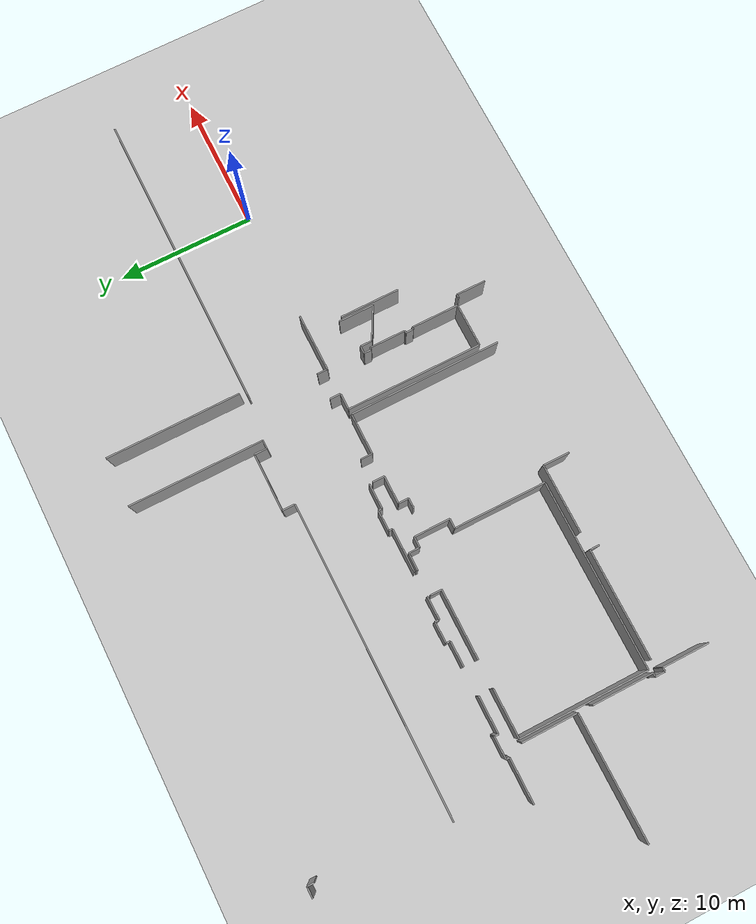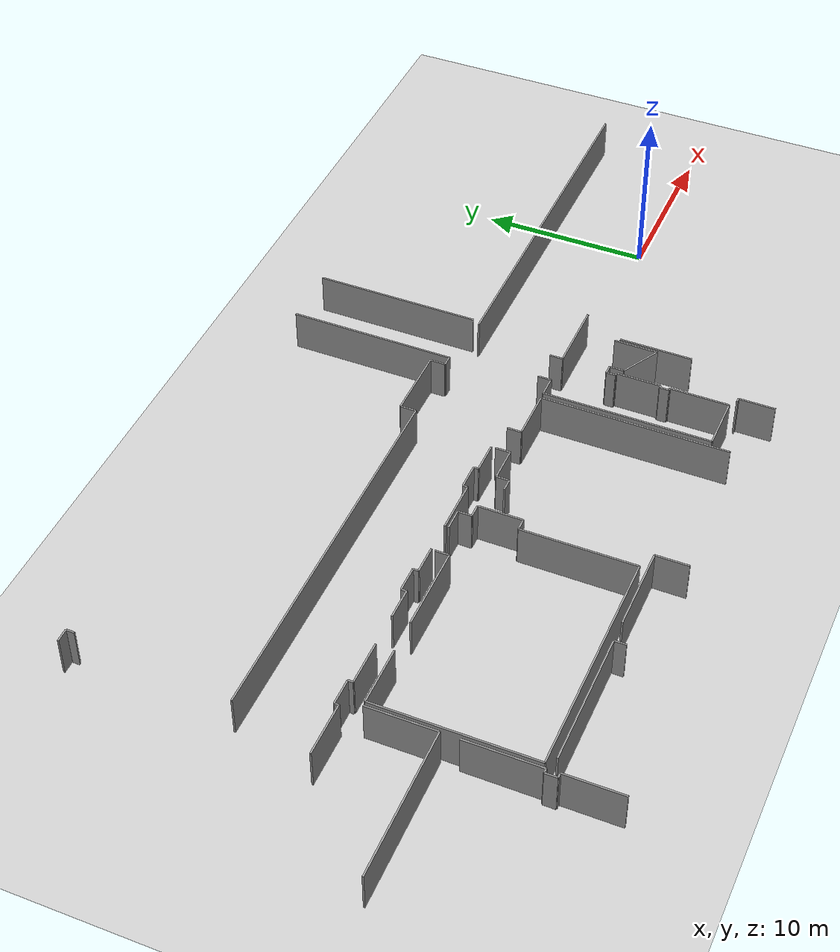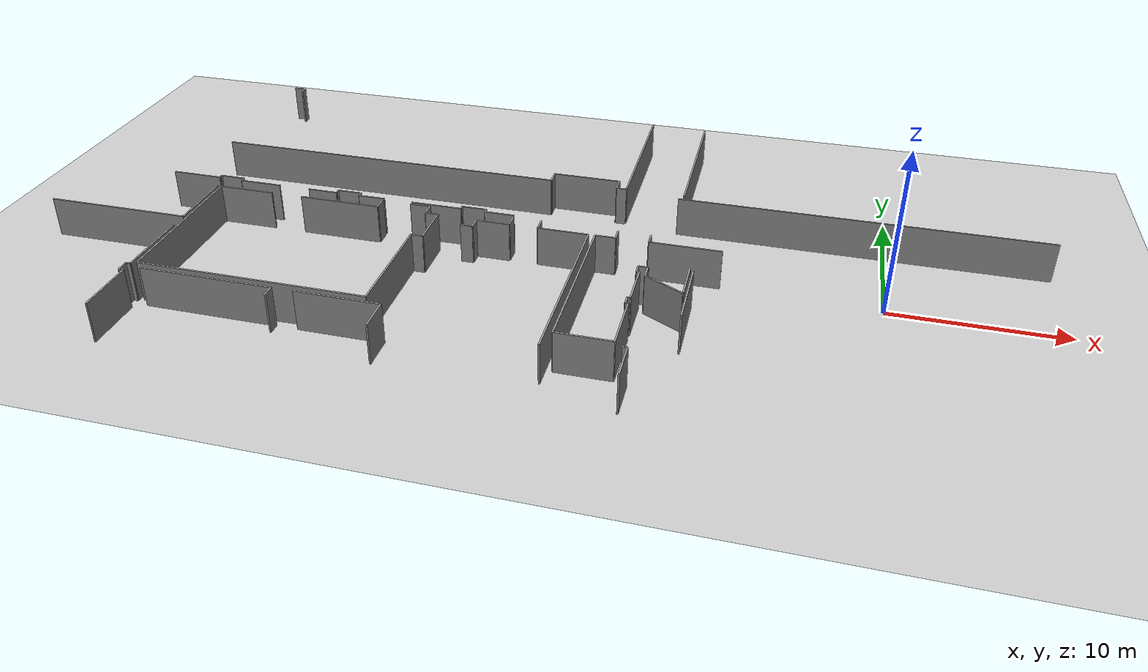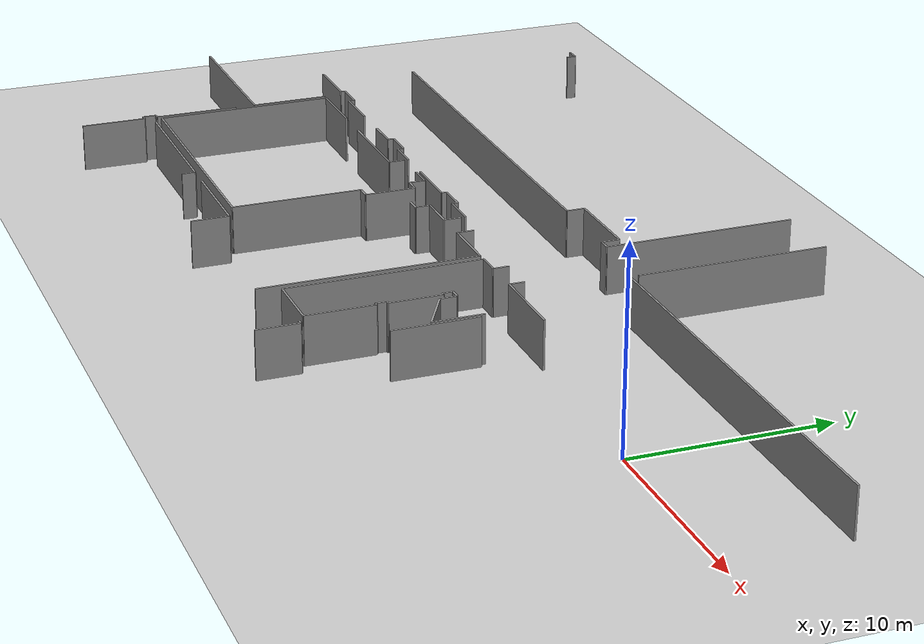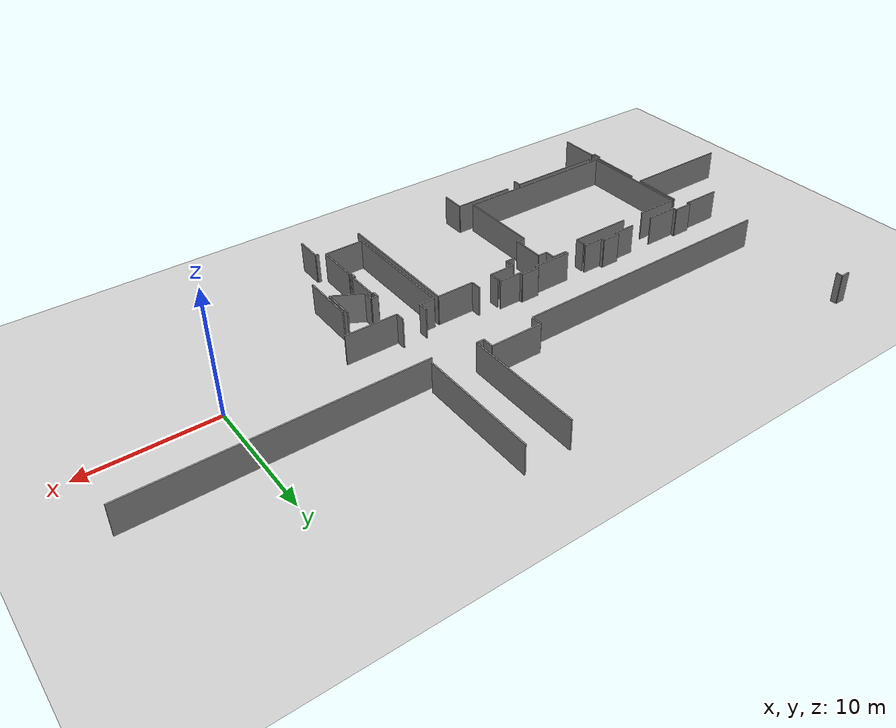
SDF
<sdf version="1.6">
 <world name="default">
  <model name="ground_plane">
   <static>1</static>
   <link name="link">
    <collision name="collision">
     <geometry><plane><normal>0 0 1</normal><size>100 100</size></plane></geometry>
     <surface><friction><ode><mu>100</mu><mu2>50</mu2></ode></friction></surface>
    </collision>
    <visual name="visual">
     <cast_shadows>0</cast_shadows>
     <geometry><plane><normal>0 0 1</normal><size>100 100</size></plane></geometry>
     <material>
      <script><uri>file://media/materials/scripts/gazebo.material</uri><name>Gazebo/Grey</name></script>
     </material>
    </visual>
   </link>
  </model>
  <model name="50057022">
   <static>1</static>
   <link name="Wall_26">
    <collision name="Wall_26_Collision">
     <geometry><box><size>0.495910292578 0.1 2.5</size></box></geometry>
     <pose>0.247955146289 0 1.25 0 0 0</pose>
    </collision>
    <visual name="Wall_26_Visual">
     <pose>0.247955146289 0 1.25 0 0 0</pose>
     <geometry><box><size>0.495910292578 0.1 2.5</size></box></geometry>
     <material>
      <script><uri>file://media/materials/scripts/gazebo.material</uri><name>Gazebo/Grey</name></script>
      <ambient>1 1 1 1</ambient>
     </material>
    </visual>
    <pose>14.2147432242 -8.39676371959 0 0 0 1.57079632679</pose>
   </link>
   <link name="Wall_27">
    <collision name="Wall_27_Collision">
     <geometry><box><size>0.782455953585 0.1 2.5</size></box></geometry>
     <pose>0.391227976792 0 1.25 0 0 0</pose>
    </collision>
    <visual name="Wall_27_Visual">
     <pose>0.391227976792 0 1.25 0 0 0</pose>
     <geometry><box><size>0.782455953585 0.1 2.5</size></box></geometry>
     <material>
      <script><uri>file://media/materials/scripts/gazebo.material</uri><name>Gazebo/Grey</name></script>
      <ambient>1 1 1 1</ambient>
     </material>
    </visual>
    <pose>14.2147432242 -7.90085342702 0 0 0 3.14159265359</pose>
   </link>
   <link name="Wall_36">
    <collision name="Wall_36_Collision">
     <geometry><box><size>9.81010171674 0.1 2.5</size></box></geometry>
     <pose>4.90505085837 0 1.25 0 0 0</pose>
    </collision>
    <visual name="Wall_36_Visual">
     <pose>4.90505085837 0 1.25 0 0 0</pose>
     <geometry><box><size>9.81010171674 0.1 2.5</size></box></geometry>
     <material>
      <script><uri>file://media/materials/scripts/gazebo.material</uri><name>Gazebo/Grey</name></script>
      <ambient>1 1 1 1</ambient>
     </material>
    </visual>
    <pose>44.3283983099 -17.6103283172 0 0 0 1.57079632679</pose>
   </link>
   <link name="Wall_37">
    <collision name="Wall_37_Collision">
     <geometry><box><size>9.80566602539 0.1 2.5</size></box></geometry>
     <pose>4.9028330127 0 1.25 0 0 0</pose>
    </collision>
    <visual name="Wall_37_Visual">
     <pose>4.9028330127 0 1.25 0 0 0</pose>
     <geometry><box><size>9.80566602539 0.1 2.5</size></box></geometry>
     <material>
      <script><uri>file://media/materials/scripts/gazebo.material</uri><name>Gazebo/Grey</name></script>
      <ambient>1 1 1 1</ambient>
     </material>
    </visual>
    <pose>40.6968344372 -7.80022660046 0 0 0 -1.57079632679</pose>
   </link>
   <link name="Wall_38">
    <collision name="Wall_38_Collision">
     <geometry><box><size>0.617194767405 0.1 2.5</size></box></geometry>
     <pose>0.308597383703 0 1.25 0 0 0</pose>
    </collision>
    <visual name="Wall_38_Visual">
     <pose>0.308597383703 0 1.25 0 0 0</pose>
     <geometry><box><size>0.617194767405 0.1 2.5</size></box></geometry>
     <material>
      <script><uri>file://media/materials/scripts/gazebo.material</uri><name>Gazebo/Grey</name></script>
      <ambient>1 1 1 1</ambient>
     </material>
    </visual>
    <pose>40.6968344372 -17.6058926259 0 0 0 3.14159265359</pose>
   </link>
   <link name="Wall_39">
    <collision name="Wall_39_Collision">
     <geometry><box><size>0.918188108799 0.1 2.5</size></box></geometry>
     <pose>0.459094054399 0 1.25 0 0 0</pose>
    </collision>
    <visual name="Wall_39_Visual">
     <pose>0.459094054399 0 1.25 0 0 0</pose>
     <geometry><box><size>0.918188108799 0.1 2.5</size></box></geometry>
     <material>
      <script><uri>file://media/materials/scripts/gazebo.material</uri><name>Gazebo/Grey</name></script>
      <ambient>1 1 1 1</ambient>
     </material>
    </visual>
    <pose>40.0796396698 -17.6058926259 0 0 0 1.57079632679</pose>
   </link>
   <link name="Wall_40">
    <collision name="Wall_40_Collision">
     <geometry><box><size>4.22658018336 0.1 2.5</size></box></geometry>
     <pose>2.11329009168 0 1.25 0 0 0</pose>
    </collision>
    <visual name="Wall_40_Visual">
     <pose>2.11329009168 0 1.25 0 0 0</pose>
     <geometry><box><size>4.22658018336 0.1 2.5</size></box></geometry>
     <material>
      <script><uri>file://media/materials/scripts/gazebo.material</uri><name>Gazebo/Grey</name></script>
      <ambient>1 1 1 1</ambient>
     </material>
    </visual>
    <pose>40.0796396698 -16.6877045171 0 0 0 3.14159265359</pose>
   </link>
   <link name="Wall_41">
    <collision name="Wall_41_Collision">
     <geometry><box><size>0.932762523224 0.1 2.5</size></box></geometry>
     <pose>0.466381261612 0 1.25 0 0 0</pose>
    </collision>
    <visual name="Wall_41_Visual">
     <pose>0.466381261612 0 1.25 0 0 0</pose>
     <geometry><box><size>0.932762523224 0.1 2.5</size></box></geometry>
     <material>
      <script><uri>file://media/materials/scripts/gazebo.material</uri><name>Gazebo/Grey</name></script>
      <ambient>1 1 1 1</ambient>
     </material>
    </visual>
    <pose>35.8530594864 -16.6877045171 0 0 0 -1.57079632679</pose>
   </link>
   <link name="Wall_42">
    <collision name="Wall_42_Collision">
     <geometry><box><size>22.398088246 0.1 2.5</size></box></geometry>
     <pose>11.199044123 0 1.25 0 0 0</pose>
    </collision>
    <visual name="Wall_42_Visual">
     <pose>11.199044123 0 1.25 0 0 0</pose>
     <geometry><box><size>22.398088246 0.1 2.5</size></box></geometry>
     <material>
      <script><uri>file://media/materials/scripts/gazebo.material</uri><name>Gazebo/Grey</name></script>
      <ambient>1 1 1 1</ambient>
     </material>
    </visual>
    <pose>35.8530594864 -17.6204670403 0 0 0 -3.14123618368</pose>
   </link>
   <link name="Wall_188">
    <collision name="Wall_188_Collision">
     <geometry><box><size>4.04750498698 0.1 2.5</size></box></geometry>
     <pose>2.02375249349 0 1.25 0 0 0</pose>
    </collision>
    <visual name="Wall_188_Visual">
     <pose>2.02375249349 0 1.25 0 0 0</pose>
     <geometry><box><size>4.04750498698 0.1 2.5</size></box></geometry>
     <material>
      <script><uri>file://media/materials/scripts/gazebo.material</uri><name>Gazebo/Grey</name></script>
      <ambient>1 1 1 1</ambient>
     </material>
    </visual>
    <pose>15.7179356546 -23.6381793895 0 0 0 -1.57079632679</pose>
   </link>
   <link name="Wall_189">
    <collision name="Wall_189_Collision">
     <geometry><box><size>8.89717796431 0.1 2.5</size></box></geometry>
     <pose>4.44858898216 0 1.25 0 0 0</pose>
    </collision>
    <visual name="Wall_189_Visual">
     <pose>4.44858898216 0 1.25 0 0 0</pose>
     <geometry><box><size>8.89717796431 0.1 2.5</size></box></geometry>
     <material>
      <script><uri>file://media/materials/scripts/gazebo.material</uri><name>Gazebo/Grey</name></script>
      <ambient>1 1 1 1</ambient>
     </material>
    </visual>
    <pose>15.7179356546 -27.6856843765 0 0 0 -3.13767546211</pose>
   </link>
   <link name="Wall_220">
    <collision name="Wall_220_Collision">
     <geometry><box><size>4.41427329435 0.1 2.5</size></box></geometry>
     <pose>2.20713664717 0 1.25 0 0 0</pose>
    </collision>
    <visual name="Wall_220_Visual">
     <pose>2.20713664717 0 1.25 0 0 0</pose>
     <geometry><box><size>4.41427329435 0.1 2.5</size></box></geometry>
     <material>
      <script><uri>file://media/materials/scripts/gazebo.material</uri><name>Gazebo/Grey</name></script>
      <ambient>1 1 1 1</ambient>
     </material>
    </visual>
    <pose>15.7024741019 -28.7513909061 0 0 0 -1.57079632679</pose>
   </link>
   <link name="Wall_221">
    <collision name="Wall_221_Collision">
     <geometry><box><size>0.271844512543 0.1 2.5</size></box></geometry>
     <pose>0.135922256271 0 1.25 0 0 0</pose>
    </collision>
    <visual name="Wall_221_Visual">
     <pose>0.135922256271 0 1.25 0 0 0</pose>
     <geometry><box><size>0.271844512543 0.1 2.5</size></box></geometry>
     <material>
      <script><uri>file://media/materials/scripts/gazebo.material</uri><name>Gazebo/Grey</name></script>
      <ambient>1 1 1 1</ambient>
     </material>
    </visual>
    <pose>15.7024741019 -33.1656642004 0 0 0 3.14159265359</pose>
   </link>
   <link name="Wall_222">
    <collision name="Wall_222_Collision">
     <geometry><box><size>0.713259168574 0.1 2.5</size></box></geometry>
     <pose>0.356629584287 0 1.25 0 0 0</pose>
    </collision>
    <visual name="Wall_222_Visual">
     <pose>0.356629584287 0 1.25 0 0 0</pose>
     <geometry><box><size>0.713259168574 0.1 2.5</size></box></geometry>
     <material>
      <script><uri>file://media/materials/scripts/gazebo.material</uri><name>Gazebo/Grey</name></script>
      <ambient>1 1 1 1</ambient>
     </material>
    </visual>
    <pose>15.4306295894 -33.1656642004 0 0 0 -1.57079632679</pose>
   </link>
   <link name="Wall_223">
    <collision name="Wall_223_Collision">
     <geometry><box><size>0.289080341776 0.1 2.5</size></box></geometry>
     <pose>0.144540170888 0 1.25 0 0 0</pose>
    </collision>
    <visual name="Wall_223_Visual">
     <pose>0.144540170888 0 1.25 0 0 0</pose>
     <geometry><box><size>0.289080341776 0.1 2.5</size></box></geometry>
     <material>
      <script><uri>file://media/materials/scripts/gazebo.material</uri><name>Gazebo/Grey</name></script>
      <ambient>1 1 1 1</ambient>
     </material>
    </visual>
    <pose>15.4306295894 -33.878923369 0 0 0 0.0</pose>
   </link>
   <link name="Wall_224">
    <collision name="Wall_224_Collision">
     <geometry><box><size>3.39735936957 0.1 2.5</size></box></geometry>
     <pose>1.69867968479 0 1.25 0 0 0</pose>
    </collision>
    <visual name="Wall_224_Visual">
     <pose>1.69867968479 0 1.25 0 0 0</pose>
     <geometry><box><size>3.39735936957 0.1 2.5</size></box></geometry>
     <material>
      <script><uri>file://media/materials/scripts/gazebo.material</uri><name>Gazebo/Grey</name></script>
      <ambient>1 1 1 1</ambient>
     </material>
    </visual>
    <pose>15.7197099311 -33.878923369 0 0 0 -1.57079632679</pose>
   </link>
   <link name="Wall_286">
    <collision name="Wall_286_Collision">
     <geometry><box><size>7.92404575606 0.1 2.5</size></box></geometry>
     <pose>3.96202287803 0 1.25 0 0 0</pose>
    </collision>
    <visual name="Wall_286_Visual">
     <pose>3.96202287803 0 1.25 0 0 0</pose>
     <geometry><box><size>7.92404575606 0.1 2.5</size></box></geometry>
     <material>
      <script><uri>file://media/materials/scripts/gazebo.material</uri><name>Gazebo/Grey</name></script>
      <ambient>1 1 1 1</ambient>
     </material>
    </visual>
    <pose>16.4690883007 -33.4394097235 0 0 0 0.0</pose>
   </link>
   <link name="Wall_287">
    <collision name="Wall_287_Collision">
     <geometry><box><size>0.697037211648 0.1 2.5</size></box></geometry>
     <pose>0.348518605824 0 1.25 0 0 0</pose>
    </collision>
    <visual name="Wall_287_Visual">
     <pose>0.348518605824 0 1.25 0 0 0</pose>
     <geometry><box><size>0.697037211648 0.1 2.5</size></box></geometry>
     <material>
      <script><uri>file://media/materials/scripts/gazebo.material</uri><name>Gazebo/Grey</name></script>
      <ambient>1 1 1 1</ambient>
     </material>
    </visual>
    <pose>24.3931340567 -33.4394097235 0 0 0 -1.57079632679</pose>
   </link>
   <link name="Wall_290">
    <collision name="Wall_290_Collision">
     <geometry><box><size>5.03134132772 0.1 2.5</size></box></geometry>
     <pose>2.51567066386 0 1.25 0 0 0</pose>
    </collision>
    <visual name="Wall_290_Visual">
     <pose>2.51567066386 0 1.25 0 0 0</pose>
     <geometry><box><size>5.03134132772 0.1 2.5</size></box></geometry>
     <material>
      <script><uri>file://media/materials/scripts/gazebo.material</uri><name>Gazebo/Grey</name></script>
      <ambient>1 1 1 1</ambient>
     </material>
    </visual>
    <pose>25.6731478454 -33.4394097235 0 0 0 0.0</pose>
   </link>
   <link name="Wall_291">
    <collision name="Wall_291_Collision">
     <geometry><box><size>1.95170419262 0.1 2.5</size></box></geometry>
     <pose>0.975852096308 0 1.25 0 0 0</pose>
    </collision>
    <visual name="Wall_291_Visual">
     <pose>0.975852096308 0 1.25 0 0 0</pose>
     <geometry><box><size>1.95170419262 0.1 2.5</size></box></geometry>
     <material>
      <script><uri>file://media/materials/scripts/gazebo.material</uri><name>Gazebo/Grey</name></script>
      <ambient>1 1 1 1</ambient>
     </material>
    </visual>
    <pose>30.7044891731 -33.4394097235 0 0 0 -1.57079632679</pose>
   </link>
   <link name="Wall_298">
    <collision name="Wall_298_Collision">
     <geometry><box><size>9.35842160359 0.1 2.5</size></box></geometry>
     <pose>4.6792108018 0 1.25 0 0 0</pose>
    </collision>
    <visual name="Wall_298_Visual">
     <pose>4.6792108018 0 1.25 0 0 0</pose>
     <geometry><box><size>9.35842160359 0.1 2.5</size></box></geometry>
     <material>
      <script><uri>file://media/materials/scripts/gazebo.material</uri><name>Gazebo/Grey</name></script>
      <ambient>1 1 1 1</ambient>
     </material>
    </visual>
    <pose>15.9906673054 -32.983167185 0 0 0 1.57079632679</pose>
   </link>
   <link name="Wall_299">
    <collision name="Wall_299_Collision">
     <geometry><box><size>3.48518605824 0.1 2.5</size></box></geometry>
     <pose>1.74259302912 0 1.25 0 0 0</pose>
    </collision>
    <visual name="Wall_299_Visual">
     <pose>1.74259302912 0 1.25 0 0 0</pose>
     <geometry><box><size>3.48518605824 0.1 2.5</size></box></geometry>
     <material>
      <script><uri>file://media/materials/scripts/gazebo.material</uri><name>Gazebo/Grey</name></script>
      <ambient>1 1 1 1</ambient>
     </material>
    </visual>
    <pose>15.9906673054 -23.6247455814 0 0 0 0.0</pose>
   </link>
   <link name="Wall_300">
    <collision name="Wall_300_Collision">
     <geometry><box><size>5.03134132772 0.1 2.5</size></box></geometry>
     <pose>2.51567066386 0 1.25 0 0 0</pose>
    </collision>
    <visual name="Wall_300_Visual">
     <pose>2.51567066386 0 1.25 0 0 0</pose>
     <geometry><box><size>5.03134132772 0.1 2.5</size></box></geometry>
     <material>
      <script><uri>file://media/materials/scripts/gazebo.material</uri><name>Gazebo/Grey</name></script>
      <ambient>1 1 1 1</ambient>
     </material>
    </visual>
    <pose>21.4655777678 -23.6247455814 0 0 0 0.0</pose>
   </link>
   <link name="Wall_301">
    <collision name="Wall_301_Collision">
     <geometry><box><size>0.818321686475 0.1 2.5</size></box></geometry>
     <pose>0.409160843238 0 1.25 0 0 0</pose>
    </collision>
    <visual name="Wall_301_Visual">
     <pose>0.409160843238 0 1.25 0 0 0</pose>
     <geometry><box><size>0.818321686475 0.1 2.5</size></box></geometry>
     <material>
      <script><uri>file://media/materials/scripts/gazebo.material</uri><name>Gazebo/Grey</name></script>
      <ambient>1 1 1 1</ambient>
     </material>
    </visual>
    <pose>26.4969190955 -23.6247455814 0 0 0 1.57079632679</pose>
   </link>
   <link name="Wall_302">
    <collision name="Wall_302_Collision">
     <geometry><box><size>1.26734038482 0.1 2.5</size></box></geometry>
     <pose>0.633670192408 0 1.25 0 0 0</pose>
    </collision>
    <visual name="Wall_302_Visual">
     <pose>0.633670192408 0 1.25 0 0 0</pose>
     <geometry><box><size>1.26734038482 0.1 2.5</size></box></geometry>
     <material>
      <script><uri>file://media/materials/scripts/gazebo.material</uri><name>Gazebo/Grey</name></script>
      <ambient>1 1 1 1</ambient>
     </material>
    </visual>
    <pose>28.3092158458 -22.8064238949 0 0 0 0.0</pose>
   </link>
   <link name="Wall_303">
    <collision name="Wall_303_Collision">
     <geometry><box><size>0.811097846282 0.1 2.5</size></box></geometry>
     <pose>0.405548923141 0 1.25 0 0 0</pose>
    </collision>
    <visual name="Wall_303_Visual">
     <pose>0.405548923141 0 1.25 0 0 0</pose>
     <geometry><box><size>0.811097846282 0.1 2.5</size></box></geometry>
     <material>
      <script><uri>file://media/materials/scripts/gazebo.material</uri><name>Gazebo/Grey</name></script>
      <ambient>1 1 1 1</ambient>
     </material>
    </visual>
    <pose>29.5765562306 -22.8064238949 0 0 0 -1.57079632679</pose>
   </link>
   <link name="Wall_304">
    <collision name="Wall_304_Collision">
     <geometry><box><size>0.785751038585 0.1 2.5</size></box></geometry>
     <pose>0.392875519293 0 1.25 0 0 0</pose>
    </collision>
    <visual name="Wall_304_Visual">
     <pose>0.392875519293 0 1.25 0 0 0</pose>
     <geometry><box><size>0.785751038585 0.1 2.5</size></box></geometry>
     <material>
      <script><uri>file://media/materials/scripts/gazebo.material</uri><name>Gazebo/Grey</name></script>
      <ambient>1 1 1 1</ambient>
     </material>
    </visual>
    <pose>29.5765562306 -23.6175217412 0 0 0 0.0</pose>
   </link>
   <link name="Wall_305">
    <collision name="Wall_305_Collision">
     <geometry><box><size>2.62339459657 0.1 2.5</size></box></geometry>
     <pose>1.31169729828 0 1.25 0 0 0</pose>
    </collision>
    <visual name="Wall_305_Visual">
     <pose>1.31169729828 0 1.25 0 0 0</pose>
     <geometry><box><size>2.62339459657 0.1 2.5</size></box></geometry>
     <material>
      <script><uri>file://media/materials/scripts/gazebo.material</uri><name>Gazebo/Grey</name></script>
      <ambient>1 1 1 1</ambient>
     </material>
    </visual>
    <pose>30.3623072692 -23.6175217412 0 0 0 -1.57079632679</pose>
   </link>
   <link name="Wall_306">
    <collision name="Wall_306_Collision">
     <geometry><box><size>0.709710615497 0.1 2.5</size></box></geometry>
     <pose>0.354855307748 0 1.25 0 0 0</pose>
    </collision>
    <visual name="Wall_306_Visual">
     <pose>0.354855307748 0 1.25 0 0 0</pose>
     <geometry><box><size>0.709710615497 0.1 2.5</size></box></geometry>
     <material>
      <script><uri>file://media/materials/scripts/gazebo.material</uri><name>Gazebo/Grey</name></script>
      <ambient>1 1 1 1</ambient>
     </material>
    </visual>
    <pose>30.3623072692 -26.2409163378 0 0 0 3.14159265359</pose>
   </link>
   <link name="Wall_307">
    <collision name="Wall_307_Collision">
     <geometry><box><size>6.73895576222 0.1 2.5</size></box></geometry>
     <pose>3.36947788111 0 1.25 0 0 0</pose>
    </collision>
    <visual name="Wall_307_Visual">
     <pose>3.36947788111 0 1.25 0 0 0</pose>
     <geometry><box><size>6.73895576222 0.1 2.5</size></box></geometry>
     <material>
      <script><uri>file://media/materials/scripts/gazebo.material</uri><name>Gazebo/Grey</name></script>
      <ambient>1 1 1 1</ambient>
     </material>
    </visual>
    <pose>29.6525966537 -26.2409163378 0 0 0 -1.57079632679</pose>
   </link>
   <link name="Wall_308">
    <collision name="Wall_308_Collision">
     <geometry><box><size>13.6619297457 0.1 2.5</size></box></geometry>
     <pose>6.83096487284 0 1.25 0 0 0</pose>
    </collision>
    <visual name="Wall_308_Visual">
     <pose>6.83096487284 0 1.25 0 0 0</pose>
     <geometry><box><size>13.6619297457 0.1 2.5</size></box></geometry>
     <material>
      <script><uri>file://media/materials/scripts/gazebo.material</uri><name>Gazebo/Grey</name></script>
      <ambient>1 1 1 1</ambient>
     </material>
    </visual>
    <pose>29.6525966537 -32.9798721 0 0 0 -3.14135146621</pose>
   </link>
   <link name="Wall_388">
    <collision name="Wall_388_Collision">
     <geometry><box><size>0.270957374273 0.1 2.5</size></box></geometry>
     <pose>0.135478687137 0 1.25 0 0 0</pose>
    </collision>
    <visual name="Wall_388_Visual">
     <pose>0.135478687137 0 1.25 0 0 0</pose>
     <geometry><box><size>0.270957374273 0.1 2.5</size></box></geometry>
     <material>
      <script><uri>file://media/materials/scripts/gazebo.material</uri><name>Gazebo/Grey</name></script>
      <ambient>1 1 1 1</ambient>
     </material>
    </visual>
    <pose>43.6463157148 -33.9270823036 0 0 0 0.0</pose>
   </link>
   <link name="Wall_389">
    <collision name="Wall_389_Collision">
     <geometry><box><size>2.16119555823 0.1 2.5</size></box></geometry>
     <pose>1.08059777911 0 1.25 0 0 0</pose>
    </collision>
    <visual name="Wall_389_Visual">
     <pose>1.08059777911 0 1.25 0 0 0</pose>
     <geometry><box><size>2.16119555823 0.1 2.5</size></box></geometry>
     <material>
      <script><uri>file://media/materials/scripts/gazebo.material</uri><name>Gazebo/Grey</name></script>
      <ambient>1 1 1 1</ambient>
     </material>
    </visual>
    <pose>43.917273089 -33.9270823036 0 0 0 -1.57079632679</pose>
   </link>
   <link name="Wall_398">
    <collision name="Wall_398_Collision">
     <geometry><box><size>0.740506986848 0.1 2.5</size></box></geometry>
     <pose>0.370253493424 0 1.25 0 0 0</pose>
    </collision>
    <visual name="Wall_398_Visual">
     <pose>0.370253493424 0 1.25 0 0 0</pose>
     <geometry><box><size>0.740506986848 0.1 2.5</size></box></geometry>
     <material>
      <script><uri>file://media/materials/scripts/gazebo.material</uri><name>Gazebo/Grey</name></script>
      <ambient>1 1 1 1</ambient>
     </material>
    </visual>
    <pose>32.0677672251 -24.4666397991 0 0 0 0.0</pose>
   </link>
   <link name="Wall_399">
    <collision name="Wall_399_Collision">
     <geometry><box><size>0.760404230889 0.1 2.5</size></box></geometry>
     <pose>0.380202115445 0 1.25 0 0 0</pose>
    </collision>
    <visual name="Wall_399_Visual">
     <pose>0.380202115445 0 1.25 0 0 0</pose>
     <geometry><box><size>0.760404230889 0.1 2.5</size></box></geometry>
     <material>
      <script><uri>file://media/materials/scripts/gazebo.material</uri><name>Gazebo/Grey</name></script>
      <ambient>1 1 1 1</ambient>
     </material>
    </visual>
    <pose>32.8082742119 -24.4666397991 0 0 0 1.57079632679</pose>
   </link>
   <link name="Wall_400">
    <collision name="Wall_400_Collision">
     <geometry><box><size>2.04041801955 0.1 2.5</size></box></geometry>
     <pose>1.02020900978 0 1.25 0 0 0</pose>
    </collision>
    <visual name="Wall_400_Visual">
     <pose>1.02020900978 0 1.25 0 0 0</pose>
     <geometry><box><size>2.04041801955 0.1 2.5</size></box></geometry>
     <material>
      <script><uri>file://media/materials/scripts/gazebo.material</uri><name>Gazebo/Grey</name></script>
      <ambient>1 1 1 1</ambient>
     </material>
    </visual>
    <pose>32.8082742119 -23.7062355682 0 0 0 0.0</pose>
   </link>
   <link name="Wall_401">
    <collision name="Wall_401_Collision">
     <geometry><box><size>0.874464865523 0.1 2.5</size></box></geometry>
     <pose>0.437232432761 0 1.25 0 0 0</pose>
    </collision>
    <visual name="Wall_401_Visual">
     <pose>0.437232432761 0 1.25 0 0 0</pose>
     <geometry><box><size>0.874464865523 0.1 2.5</size></box></geometry>
     <material>
      <script><uri>file://media/materials/scripts/gazebo.material</uri><name>Gazebo/Grey</name></script>
      <ambient>1 1 1 1</ambient>
     </material>
    </visual>
    <pose>34.8486922315 -23.7062355682 0 0 0 1.57079632679</pose>
   </link>
   <link name="Wall_402">
    <collision name="Wall_402_Collision">
     <geometry><box><size>0.852666610904 0.1 2.5</size></box></geometry>
     <pose>0.426333305452 0 1.25 0 0 0</pose>
    </collision>
    <visual name="Wall_402_Visual">
     <pose>0.426333305452 0 1.25 0 0 0</pose>
     <geometry><box><size>0.852666610904 0.1 2.5</size></box></geometry>
     <material>
      <script><uri>file://media/materials/scripts/gazebo.material</uri><name>Gazebo/Grey</name></script>
      <ambient>1 1 1 1</ambient>
     </material>
    </visual>
    <pose>36.5807663354 -22.8317707026 0 0 0 -1.57079632679</pose>
   </link>
   <link name="Wall_403">
    <collision name="Wall_403_Collision">
     <geometry><box><size>3.0378149024 0.1 2.5</size></box></geometry>
     <pose>1.5189074512 0 1.25 0 0 0</pose>
    </collision>
    <visual name="Wall_403_Visual">
     <pose>1.5189074512 0 1.25 0 0 0</pose>
     <geometry><box><size>3.0378149024 0.1 2.5</size></box></geometry>
     <material>
      <script><uri>file://media/materials/scripts/gazebo.material</uri><name>Gazebo/Grey</name></script>
      <ambient>1 1 1 1</ambient>
     </material>
    </visual>
    <pose>36.5807663354 -23.6844373135 0 0 0 0.0</pose>
   </link>
   <link name="Wall_404">
    <collision name="Wall_404_Collision">
     <geometry><box><size>11.0983532179 0.1 2.5</size></box></geometry>
     <pose>5.54917660895 0 1.25 0 0 0</pose>
    </collision>
    <visual name="Wall_404_Visual">
     <pose>5.54917660895 0 1.25 0 0 0</pose>
     <geometry><box><size>11.0983532179 0.1 2.5</size></box></geometry>
     <material>
      <script><uri>file://media/materials/scripts/gazebo.material</uri><name>Gazebo/Grey</name></script>
      <ambient>1 1 1 1</ambient>
     </material>
    </visual>
    <pose>39.6185812378 -23.6844373135 0 0 0 -1.57079632679</pose>
   </link>
   <link name="Wall_407">
    <collision name="Wall_407_Collision">
     <geometry><box><size>9.94659427618 0.1 2.5</size></box></geometry>
     <pose>4.97329713809 0 1.25 0 0 0</pose>
    </collision>
    <visual name="Wall_407_Visual">
     <pose>4.97329713809 0 1.25 0 0 0</pose>
     <geometry><box><size>9.94659427618 0.1 2.5</size></box></geometry>
     <material>
      <script><uri>file://media/materials/scripts/gazebo.material</uri><name>Gazebo/Grey</name></script>
      <ambient>1 1 1 1</ambient>
     </material>
    </visual>
    <pose>40.0194410015 -33.6041639736 0 0 0 1.57079632679</pose>
   </link>
   <link name="Wall_408">
    <collision name="Wall_408_Collision">
     <geometry><box><size>1.20929619519 0.1 2.5</size></box></geometry>
     <pose>0.604648097595 0 1.25 0 0 0</pose>
    </collision>
    <visual name="Wall_408_Visual">
     <pose>0.604648097595 0 1.25 0 0 0</pose>
     <geometry><box><size>1.20929619519 0.1 2.5</size></box></geometry>
     <material>
      <script><uri>file://media/materials/scripts/gazebo.material</uri><name>Gazebo/Grey</name></script>
      <ambient>1 1 1 1</ambient>
     </material>
    </visual>
    <pose>40.0194410015 -23.6575696974 0 0 0 0.0</pose>
   </link>
   <link name="Wall_409">
    <collision name="Wall_409_Collision">
     <geometry><box><size>0.798044240318 0.1 2.5</size></box></geometry>
     <pose>0.399022120159 0 1.25 0 0 0</pose>
    </collision>
    <visual name="Wall_409_Visual">
     <pose>0.399022120159 0 1.25 0 0 0</pose>
     <geometry><box><size>0.798044240318 0.1 2.5</size></box></geometry>
     <material>
      <script><uri>file://media/materials/scripts/gazebo.material</uri><name>Gazebo/Grey</name></script>
      <ambient>1 1 1 1</ambient>
     </material>
    </visual>
    <pose>41.2287371967 -23.6575696974 0 0 0 1.57079632679</pose>
   </link>
   <link name="Wall_410">
    <collision name="Wall_410_Collision">
     <geometry><box><size>0.770289485891 0.1 2.5</size></box></geometry>
     <pose>0.385144742945 0 1.25 0 0 0</pose>
    </collision>
    <visual name="Wall_410_Visual">
     <pose>0.385144742945 0 1.25 0 0 0</pose>
     <geometry><box><size>0.770289485891 0.1 2.5</size></box></geometry>
     <material>
      <script><uri>file://media/materials/scripts/gazebo.material</uri><name>Gazebo/Grey</name></script>
      <ambient>1 1 1 1</ambient>
     </material>
    </visual>
    <pose>43.1751185597 -22.8595254571 0 0 0 -1.57079632679</pose>
   </link>
   <link name="Wall_411">
    <collision name="Wall_411_Collision">
     <geometry><box><size>4.23291688528 0.1 2.5</size></box></geometry>
     <pose>2.11645844264 0 1.25 0 0 0</pose>
    </collision>
    <visual name="Wall_411_Visual">
     <pose>2.11645844264 0 1.25 0 0 0</pose>
     <geometry><box><size>4.23291688528 0.1 2.5</size></box></geometry>
     <material>
      <script><uri>file://media/materials/scripts/gazebo.material</uri><name>Gazebo/Grey</name></script>
      <ambient>1 1 1 1</ambient>
     </material>
    </visual>
    <pose>43.1751185597 -23.629814943 0 0 0 0.0</pose>
   </link>
   <link name="Wall_414">
    <collision name="Wall_414_Collision">
     <geometry><box><size>2.59475270387 0.1 2.5</size></box></geometry>
     <pose>1.29737635194 0 1.25 0 0 0</pose>
    </collision>
    <visual name="Wall_414_Visual">
     <pose>1.29737635194 0 1.25 0 0 0</pose>
     <geometry><box><size>2.59475270387 0.1 2.5</size></box></geometry>
     <material>
      <script><uri>file://media/materials/scripts/gazebo.material</uri><name>Gazebo/Grey</name></script>
      <ambient>1 1 1 1</ambient>
     </material>
    </visual>
    <pose>45.8541493992 -25.8480408185 0 0 0 -1.57079632679</pose>
   </link>
   <link name="Wall_415">
    <collision name="Wall_415_Collision">
     <geometry><box><size>2.57433738069 0.1 2.5</size></box></geometry>
     <pose>1.28716869034 0 1.25 0 0 0</pose>
    </collision>
    <visual name="Wall_415_Visual">
     <pose>1.28716869034 0 1.25 0 0 0</pose>
     <geometry><box><size>2.57433738069 0.1 2.5</size></box></geometry>
     <material>
      <script><uri>file://media/materials/scripts/gazebo.material</uri><name>Gazebo/Grey</name></script>
      <ambient>1 1 1 1</ambient>
     </material>
    </visual>
    <pose>45.8541493992 -28.4427935224 0 0 0 2.64156622119</pose>
   </link>
   <link name="Wall_416">
    <collision name="Wall_416_Collision">
     <geometry><box><size>0.815533537629 0.1 2.5</size></box></geometry>
     <pose>0.407766768814 0 1.25 0 0 0</pose>
    </collision>
    <visual name="Wall_416_Visual">
     <pose>0.407766768814 0 1.25 0 0 0</pose>
     <geometry><box><size>0.815533537629 0.1 2.5</size></box></geometry>
     <material>
      <script><uri>file://media/materials/scripts/gazebo.material</uri><name>Gazebo/Grey</name></script>
      <ambient>1 1 1 1</ambient>
     </material>
    </visual>
    <pose>43.5949884292 -27.2085307216 0 0 0 1.57079632679</pose>
   </link>
   <link name="Wall_417">
    <collision name="Wall_417_Collision">
     <geometry><box><size>0.0441034453916 0.1 2.5</size></box></geometry>
     <pose>0.0220517226958 0 1.25 0 0 0</pose>
    </collision>
    <visual name="Wall_417_Visual">
     <pose>0.0220517226958 0 1.25 0 0 0</pose>
     <geometry><box><size>0.0441034453916 0.1 2.5</size></box></geometry>
     <material>
      <script><uri>file://media/materials/scripts/gazebo.material</uri><name>Gazebo/Grey</name></script>
      <ambient>1 1 1 1</ambient>
     </material>
    </visual>
    <pose>43.5949884292 -26.392997184 0 0 0 1.57079632679</pose>
   </link>
   <link name="Wall_418">
    <collision name="Wall_418_Collision">
     <geometry><box><size>0.54001373797 0.1 2.5</size></box></geometry>
     <pose>0.270006868985 0 1.25 0 0 0</pose>
    </collision>
    <visual name="Wall_418_Visual">
     <pose>0.270006868985 0 1.25 0 0 0</pose>
     <geometry><box><size>0.54001373797 0.1 2.5</size></box></geometry>
     <material>
      <script><uri>file://media/materials/scripts/gazebo.material</uri><name>Gazebo/Grey</name></script>
      <ambient>1 1 1 1</ambient>
     </material>
    </visual>
    <pose>43.5949884292 -26.3488937386 0 0 0 3.14159265359</pose>
   </link>
   <link name="Wall_419">
    <collision name="Wall_419_Collision">
     <geometry><box><size>0.54001373797 0.1 2.5</size></box></geometry>
     <pose>0.270006868985 0 1.25 0 0 0</pose>
    </collision>
    <visual name="Wall_419_Visual">
     <pose>0.270006868985 0 1.25 0 0 0</pose>
     <geometry><box><size>0.54001373797 0.1 2.5</size></box></geometry>
     <material>
      <script><uri>file://media/materials/scripts/gazebo.material</uri><name>Gazebo/Grey</name></script>
      <ambient>1 1 1 1</ambient>
     </material>
    </visual>
    <pose>43.0549746912 -26.3488937386 0 0 0 -1.57079632679</pose>
   </link>
   <link name="Wall_420">
    <collision name="Wall_420_Collision">
     <geometry><box><size>0.165387920218 0.1 2.5</size></box></geometry>
     <pose>0.0826939601092 0 1.25 0 0 0</pose>
    </collision>
    <visual name="Wall_420_Visual">
     <pose>0.0826939601092 0 1.25 0 0 0</pose>
     <geometry><box><size>0.165387920218 0.1 2.5</size></box></geometry>
     <material>
      <script><uri>file://media/materials/scripts/gazebo.material</uri><name>Gazebo/Grey</name></script>
      <ambient>1 1 1 1</ambient>
     </material>
    </visual>
    <pose>43.0549746912 -26.8889074765 0 0 0 0.0</pose>
   </link>
   <link name="Wall_421">
    <collision name="Wall_421_Collision">
     <geometry><box><size>2.66065440388 0.1 2.5</size></box></geometry>
     <pose>1.33032720194 0 1.25 0 0 0</pose>
    </collision>
    <visual name="Wall_421_Visual">
     <pose>1.33032720194 0 1.25 0 0 0</pose>
     <geometry><box><size>2.66065440388 0.1 2.5</size></box></geometry>
     <material>
      <script><uri>file://media/materials/scripts/gazebo.material</uri><name>Gazebo/Grey</name></script>
      <ambient>1 1 1 1</ambient>
     </material>
    </visual>
    <pose>43.2203626114 -26.8889074765 0 0 0 -1.57079632679</pose>
   </link>
   <link name="Wall_422">
    <collision name="Wall_422_Collision">
     <geometry><box><size>0.162473037333 0.1 2.5</size></box></geometry>
     <pose>0.0812365186666 0 1.25 0 0 0</pose>
    </collision>
    <visual name="Wall_422_Visual">
     <pose>0.0812365186666 0 1.25 0 0 0</pose>
     <geometry><box><size>0.162473037333 0.1 2.5</size></box></geometry>
     <material>
      <script><uri>file://media/materials/scripts/gazebo.material</uri><name>Gazebo/Grey</name></script>
      <ambient>1 1 1 1</ambient>
     </material>
    </visual>
    <pose>43.2203626114 -29.5495618804 0 0 0 3.14159265359</pose>
   </link>
   <link name="Wall_423">
    <collision name="Wall_423_Collision">
     <geometry><box><size>0.553194077972 0.1 2.5</size></box></geometry>
     <pose>0.276597038986 0 1.25 0 0 0</pose>
    </collision>
    <visual name="Wall_423_Visual">
     <pose>0.276597038986 0 1.25 0 0 0</pose>
     <geometry><box><size>0.553194077972 0.1 2.5</size></box></geometry>
     <material>
      <script><uri>file://media/materials/scripts/gazebo.material</uri><name>Gazebo/Grey</name></script>
      <ambient>1 1 1 1</ambient>
     </material>
    </visual>
    <pose>43.0578895741 -29.5495618804 0 0 0 -1.57079632679</pose>
   </link>
   <link name="Wall_424">
    <collision name="Wall_424_Collision">
     <geometry><box><size>0.150813505793 0.1 2.5</size></box></geometry>
     <pose>0.0754067528965 0 1.25 0 0 0</pose>
    </collision>
    <visual name="Wall_424_Visual">
     <pose>0.0754067528965 0 1.25 0 0 0</pose>
     <geometry><box><size>0.150813505793 0.1 2.5</size></box></geometry>
     <material>
      <script><uri>file://media/materials/scripts/gazebo.material</uri><name>Gazebo/Grey</name></script>
      <ambient>1 1 1 1</ambient>
     </material>
    </visual>
    <pose>43.0578895741 -30.1027559584 0 0 0 0.0</pose>
   </link>
   <link name="Wall_425">
    <collision name="Wall_425_Collision">
     <geometry><box><size>3.4932970367 0.1 2.5</size></box></geometry>
     <pose>1.74664851835 0 1.25 0 0 0</pose>
    </collision>
    <visual name="Wall_425_Visual">
     <pose>1.74664851835 0 1.25 0 0 0</pose>
     <geometry><box><size>3.4932970367 0.1 2.5</size></box></geometry>
     <material>
      <script><uri>file://media/materials/scripts/gazebo.material</uri><name>Gazebo/Grey</name></script>
      <ambient>1 1 1 1</ambient>
     </material>
    </visual>
    <pose>43.2087030799 -30.1027559584 0 0 0 -1.57079632679</pose>
   </link>
   <link name="Wall_426">
    <collision name="Wall_426_Collision">
     <geometry><box><size>3.18927239235 0.1 2.5</size></box></geometry>
     <pose>1.59463619618 0 1.25 0 0 0</pose>
    </collision>
    <visual name="Wall_426_Visual">
     <pose>1.59463619618 0 1.25 0 0 0</pose>
     <geometry><box><size>3.18927239235 0.1 2.5</size></box></geometry>
     <material>
      <script><uri>file://media/materials/scripts/gazebo.material</uri><name>Gazebo/Grey</name></script>
      <ambient>1 1 1 1</ambient>
     </material>
    </visual>
    <pose>43.2087030799 -33.5960529951 0 0 0 -3.13904944429</pose>
   </link>
   <link name="Wall_429">
    <collision name="Wall_429_Collision">
     <geometry><box><size>4.35774991319 0.1 2.5</size></box></geometry>
     <pose>2.17887495659 0 1.25 0 0 0</pose>
    </collision>
    <visual name="Wall_429_Visual">
     <pose>2.17887495659 0 1.25 0 0 0</pose>
     <geometry><box><size>4.35774991319 0.1 2.5</size></box></geometry>
     <material>
      <script><uri>file://media/materials/scripts/gazebo.material</uri><name>Gazebo/Grey</name></script>
      <ambient>1 1 1 1</ambient>
     </material>
    </visual>
    <pose>46.0697239986 -30.4751005635 0 0 0 1.57079632679</pose>
   </link>
   <link name="Wall_604">
    <collision name="Wall_604_Collision">
     <geometry><box><size>21.9472938481 0.1 2.5</size></box></geometry>
     <pose>10.973646924 0 1.25 0 0 0</pose>
    </collision>
    <visual name="Wall_604_Visual">
     <pose>10.973646924 0 1.25 0 0 0</pose>
     <geometry><box><size>21.9472938481 0.1 2.5</size></box></geometry>
     <material>
      <script><uri>file://media/materials/scripts/gazebo.material</uri><name>Gazebo/Grey</name></script>
      <ambient>1 1 1 1</ambient>
     </material>
    </visual>
    <pose>44.0300663833 -18.054404388 0 0 0 0.0</pose>
   </link>
   <link name="Wall_645">
    <collision name="Wall_645_Collision">
     <geometry><box><size>1.85095063202 0.1 2.5</size></box></geometry>
     <pose>0.925475316011 0 1.25 0 0 0</pose>
    </collision>
    <visual name="Wall_645_Visual">
     <pose>0.925475316011 0 1.25 0 0 0</pose>
     <geometry><box><size>1.85095063202 0.1 2.5</size></box></geometry>
     <material>
      <script><uri>file://media/materials/scripts/gazebo.material</uri><name>Gazebo/Grey</name></script>
      <ambient>1 1 1 1</ambient>
     </material>
    </visual>
    <pose>34.8328504766 -22.5940176464 0 0 0 3.14159265359</pose>
   </link>
   <link name="Wall_646">
    <collision name="Wall_646_Collision">
     <geometry><box><size>0.280589161198 0.1 2.5</size></box></geometry>
     <pose>0.140294580599 0 1.25 0 0 0</pose>
    </collision>
    <visual name="Wall_646_Visual">
     <pose>0.140294580599 0 1.25 0 0 0</pose>
     <geometry><box><size>0.280589161198 0.1 2.5</size></box></geometry>
     <material>
      <script><uri>file://media/materials/scripts/gazebo.material</uri><name>Gazebo/Grey</name></script>
      <ambient>1 1 1 1</ambient>
     </material>
    </visual>
    <pose>32.9818998446 -22.5940176464 0 0 0 1.57079632679</pose>
   </link>
   <link name="Wall_647">
    <collision name="Wall_647_Collision">
     <geometry><box><size>1.51573910024 0.1 2.5</size></box></geometry>
     <pose>0.75786955012 0 1.25 0 0 0</pose>
    </collision>
    <visual name="Wall_647_Visual">
     <pose>0.75786955012 0 1.25 0 0 0</pose>
     <geometry><box><size>1.51573910024 0.1 2.5</size></box></geometry>
     <material>
      <script><uri>file://media/materials/scripts/gazebo.material</uri><name>Gazebo/Grey</name></script>
      <ambient>1 1 1 1</ambient>
     </material>
    </visual>
    <pose>32.9818998446 -22.3134284852 0 0 0 3.14159265359</pose>
   </link>
   <link name="Wall_648">
    <collision name="Wall_648_Collision">
     <geometry><box><size>0.276913874082 0.1 2.5</size></box></geometry>
     <pose>0.138456937041 0 1.25 0 0 0</pose>
    </collision>
    <visual name="Wall_648_Visual">
     <pose>0.138456937041 0 1.25 0 0 0</pose>
     <geometry><box><size>0.276913874082 0.1 2.5</size></box></geometry>
     <material>
      <script><uri>file://media/materials/scripts/gazebo.material</uri><name>Gazebo/Grey</name></script>
      <ambient>1 1 1 1</ambient>
     </material>
    </visual>
    <pose>31.4661607444 -22.3134284852 0 0 0 -1.57079632679</pose>
   </link>
   <link name="Wall_649">
    <collision name="Wall_649_Collision">
     <geometry><box><size>3.14807351588 0.1 2.5</size></box></geometry>
     <pose>1.57403675794 0 1.25 0 0 0</pose>
    </collision>
    <visual name="Wall_649_Visual">
     <pose>1.57403675794 0 1.25 0 0 0</pose>
     <geometry><box><size>3.14807351588 0.1 2.5</size></box></geometry>
     <material>
      <script><uri>file://media/materials/scripts/gazebo.material</uri><name>Gazebo/Grey</name></script>
      <ambient>1 1 1 1</ambient>
     </material>
    </visual>
    <pose>31.4661607444 -22.5903423593 0 0 0 3.14159265359</pose>
   </link>
   <link name="Wall_650">
    <collision name="Wall_650_Collision">
     <geometry><box><size>1.67605765892 0.1 2.5</size></box></geometry>
     <pose>0.838028829459 0 1.25 0 0 0</pose>
    </collision>
    <visual name="Wall_650_Visual">
     <pose>0.838028829459 0 1.25 0 0 0</pose>
     <geometry><box><size>1.67605765892 0.1 2.5</size></box></geometry>
     <material>
      <script><uri>file://media/materials/scripts/gazebo.material</uri><name>Gazebo/Grey</name></script>
      <ambient>1 1 1 1</ambient>
     </material>
    </visual>
    <pose>26.5320244242 -22.5903423593 0 0 0 3.14159265359</pose>
   </link>
   <link name="Wall_651">
    <collision name="Wall_651_Collision">
     <geometry><box><size>0.314807351588 0.1 2.5</size></box></geometry>
     <pose>0.157403675794 0 1.25 0 0 0</pose>
    </collision>
    <visual name="Wall_651_Visual">
     <pose>0.157403675794 0 1.25 0 0 0</pose>
     <geometry><box><size>0.314807351588 0.1 2.5</size></box></geometry>
     <material>
      <script><uri>file://media/materials/scripts/gazebo.material</uri><name>Gazebo/Grey</name></script>
      <ambient>1 1 1 1</ambient>
     </material>
    </visual>
    <pose>24.8559667653 -22.5903423593 0 0 0 1.57079632679</pose>
   </link>
   <link name="Wall_652">
    <collision name="Wall_652_Collision">
     <geometry><box><size>1.52524415313 0.1 2.5</size></box></geometry>
     <pose>0.762622076563 0 1.25 0 0 0</pose>
    </collision>
    <visual name="Wall_652_Visual">
     <pose>0.762622076563 0 1.25 0 0 0</pose>
     <geometry><box><size>1.52524415313 0.1 2.5</size></box></geometry>
     <material>
      <script><uri>file://media/materials/scripts/gazebo.material</uri><name>Gazebo/Grey</name></script>
      <ambient>1 1 1 1</ambient>
     </material>
    </visual>
    <pose>24.8559667653 -22.2755350077 0 0 0 3.14159265359</pose>
   </link>
   <link name="Wall_653">
    <collision name="Wall_653_Collision">
     <geometry><box><size>0.318482638704 0.1 2.5</size></box></geometry>
     <pose>0.159241319352 0 1.25 0 0 0</pose>
    </collision>
    <visual name="Wall_653_Visual">
     <pose>0.159241319352 0 1.25 0 0 0</pose>
     <geometry><box><size>0.318482638704 0.1 2.5</size></box></geometry>
     <material>
      <script><uri>file://media/materials/scripts/gazebo.material</uri><name>Gazebo/Grey</name></script>
      <ambient>1 1 1 1</ambient>
     </material>
    </visual>
    <pose>23.3307226121 -22.2755350077 0 0 0 -1.57079632679</pose>
   </link>
   <link name="Wall_654">
    <collision name="Wall_654_Collision">
     <geometry><box><size>1.84258618548 0.1 2.5</size></box></geometry>
     <pose>0.921293092741 0 1.25 0 0 0</pose>
    </collision>
    <visual name="Wall_654_Visual">
     <pose>0.921293092741 0 1.25 0 0 0</pose>
     <geometry><box><size>1.84258618548 0.1 2.5</size></box></geometry>
     <material>
      <script><uri>file://media/materials/scripts/gazebo.material</uri><name>Gazebo/Grey</name></script>
      <ambient>1 1 1 1</ambient>
     </material>
    </visual>
    <pose>23.3307226121 -22.5940176464 0 0 0 3.14159265359</pose>
   </link>
   <link name="Wall_655">
    <collision name="Wall_655_Collision">
     <geometry><box><size>2.64481264907 0.1 2.5</size></box></geometry>
     <pose>1.32240632454 0 1.25 0 0 0</pose>
    </collision>
    <visual name="Wall_655_Visual">
     <pose>1.32240632454 0 1.25 0 0 0</pose>
     <geometry><box><size>2.64481264907 0.1 2.5</size></box></geometry>
     <material>
      <script><uri>file://media/materials/scripts/gazebo.material</uri><name>Gazebo/Grey</name></script>
      <ambient>1 1 1 1</ambient>
     </material>
    </visual>
    <pose>19.493469395 -22.5940176464 0 0 0 3.14159265359</pose>
   </link>
   <link name="Wall_656">
    <collision name="Wall_656_Collision">
     <geometry><box><size>0.300613139278 0.1 2.5</size></box></geometry>
     <pose>0.150306569639 0 1.25 0 0 0</pose>
    </collision>
    <visual name="Wall_656_Visual">
     <pose>0.150306569639 0 1.25 0 0 0</pose>
     <geometry><box><size>0.300613139278 0.1 2.5</size></box></geometry>
     <material>
      <script><uri>file://media/materials/scripts/gazebo.material</uri><name>Gazebo/Grey</name></script>
      <ambient>1 1 1 1</ambient>
     </material>
    </visual>
    <pose>16.8486567459 -22.5940176464 0 0 0 1.57079632679</pose>
   </link>
   <link name="Wall_657">
    <collision name="Wall_657_Collision">
     <geometry><box><size>1.56491190717 0.1 2.5</size></box></geometry>
     <pose>0.782455953585 0 1.25 0 0 0</pose>
    </collision>
    <visual name="Wall_657_Visual">
     <pose>0.782455953585 0 1.25 0 0 0</pose>
     <geometry><box><size>1.56491190717 0.1 2.5</size></box></geometry>
     <material>
      <script><uri>file://media/materials/scripts/gazebo.material</uri><name>Gazebo/Grey</name></script>
      <ambient>1 1 1 1</ambient>
     </material>
    </visual>
    <pose>16.8486567459 -22.2934045072 0 0 0 3.14159265359</pose>
   </link>
   <link name="Wall_658">
    <collision name="Wall_658_Collision">
     <geometry><box><size>0.253468076963 0.1 2.5</size></box></geometry>
     <pose>0.126734038482 0 1.25 0 0 0</pose>
    </collision>
    <visual name="Wall_658_Visual">
     <pose>0.126734038482 0 1.25 0 0 0</pose>
     <geometry><box><size>0.253468076963 0.1 2.5</size></box></geometry>
     <material>
      <script><uri>file://media/materials/scripts/gazebo.material</uri><name>Gazebo/Grey</name></script>
      <ambient>1 1 1 1</ambient>
     </material>
    </visual>
    <pose>15.2837448388 -22.2934045072 0 0 0 -1.57079632679</pose>
   </link>
   <link name="Wall_659">
    <collision name="Wall_659_Collision">
     <geometry><box><size>3.18495312108 0.1 2.5</size></box></geometry>
     <pose>1.59247656054 0 1.25 0 0 0</pose>
    </collision>
    <visual name="Wall_659_Visual">
     <pose>1.59247656054 0 1.25 0 0 0</pose>
     <geometry><box><size>3.18495312108 0.1 2.5</size></box></geometry>
     <material>
      <script><uri>file://media/materials/scripts/gazebo.material</uri><name>Gazebo/Grey</name></script>
      <ambient>1 1 1 1</ambient>
     </material>
    </visual>
    <pose>15.2837448388 -22.5468725841 0 0 0 3.14159265359</pose>
   </link>
   <pose>-56.55 23.8342557037 0 0 0 0</pose>
  </model>
 </world>
</sdf>
